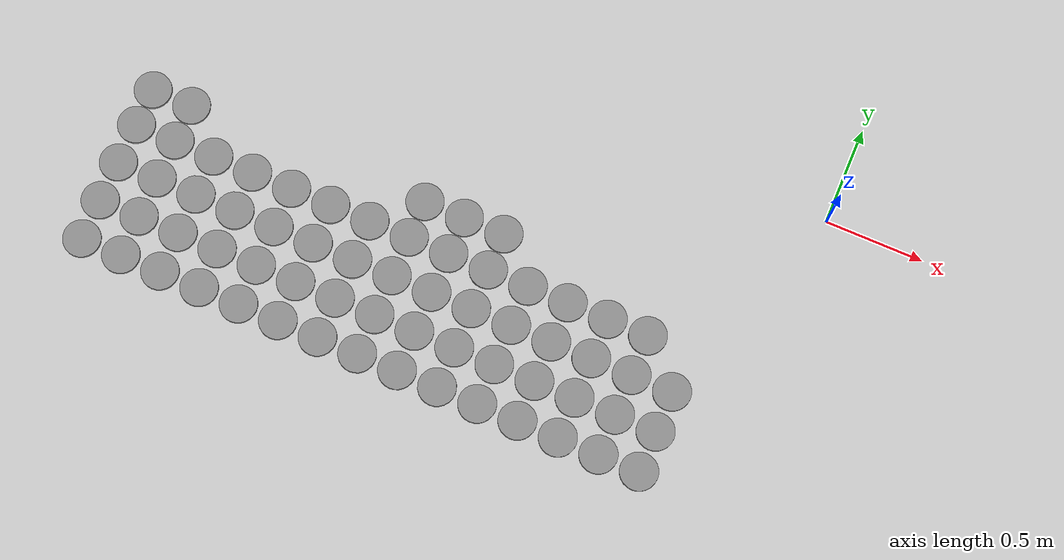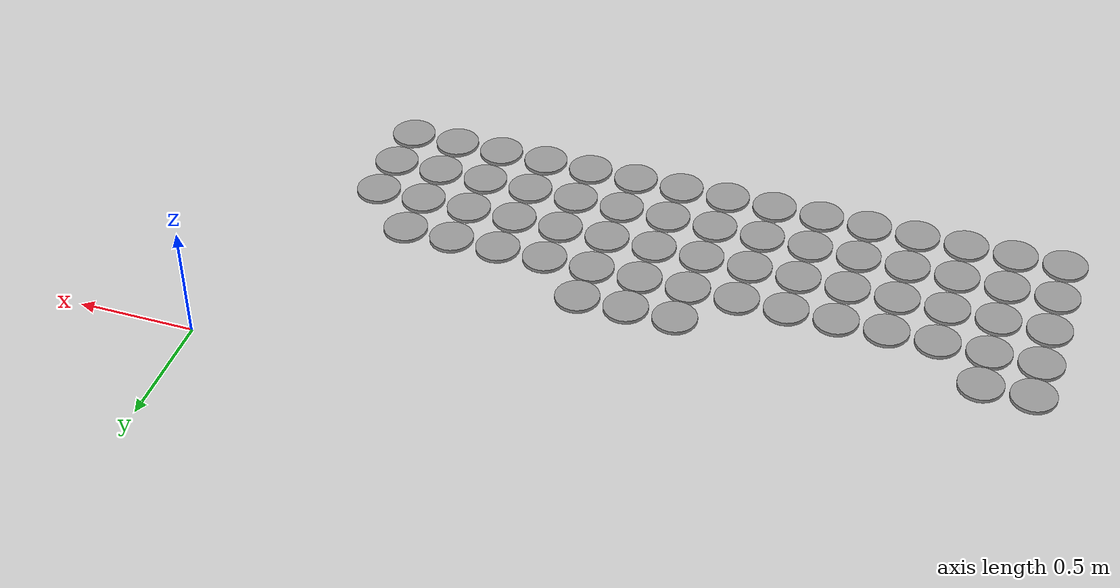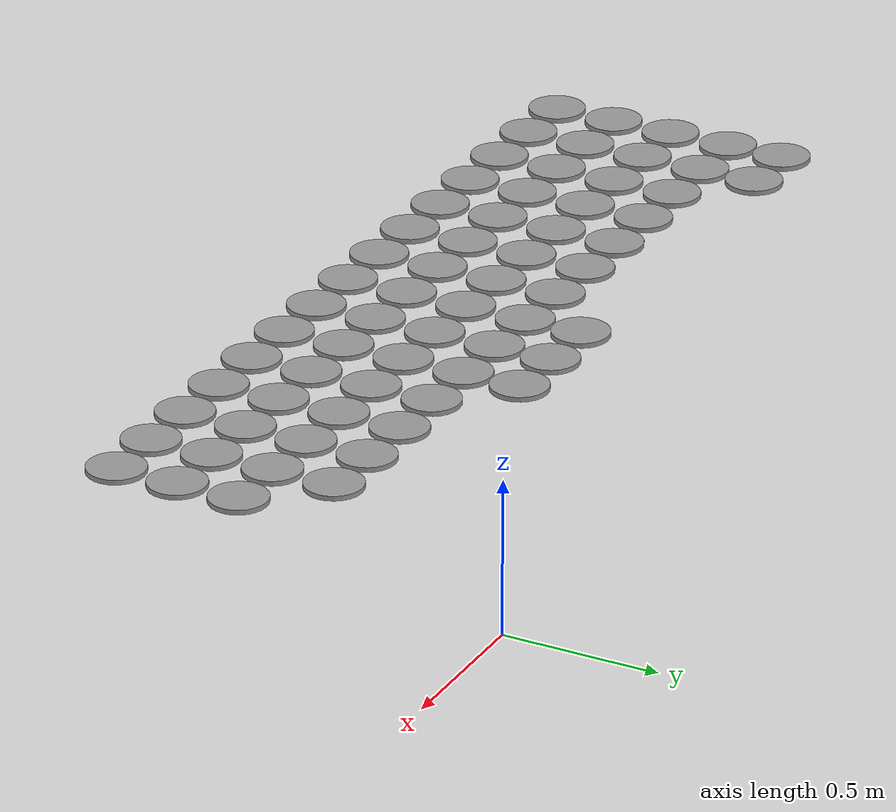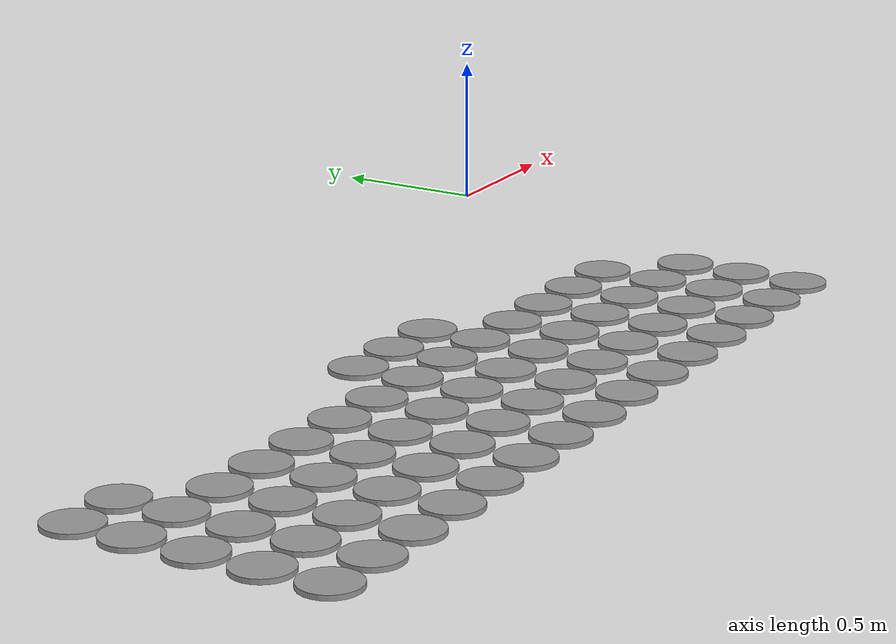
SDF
<sdf version="1.6">
 <world name="default">
  <model name="triple-I"><pose>-0.465032 -1.9092 0.030503 -0.000121 6.3e-05 0.005487</pose></model>
  <model name="unit_cylinder_clone_540">
   <pose>-3.32 -1.5 0.008111 0 -0 0</pose>
   <link name="link">
    <inertial>
     <mass>1</mass>
     <inertia><ixx>0.145833</ixx><ixy>0</ixy><ixz>0</ixz><iyy>0.145833</iyy><iyz>0</iyz><izz>0.125</izz></inertia>
    </inertial>
    <collision name="collision">
     <geometry><cylinder><radius>0.0950718</radius><length>0.0162339</length></cylinder></geometry>
     <max_contacts>5</max_contacts>
    </collision>
    <visual name="visual">
     <geometry><cylinder><radius>0.0950718</radius><length>0.0162339</length></cylinder></geometry>
     <material>
      <script><name>Gazebo/Grey</name><uri>file://media/materials/scripts/gazebo.material</uri></script>
     </material>
    </visual>
   </link>
  </model>
  <model name="unit_cylinder_clone_541">
   <pose>-3.32 -1.29 0.008111 0 -0 0</pose>
   <link name="link">
    <inertial>
     <mass>1</mass>
     <inertia><ixx>0.145833</ixx><ixy>0</ixy><ixz>0</ixz><iyy>0.145833</iyy><iyz>0</iyz><izz>0.125</izz></inertia>
    </inertial>
    <collision name="collision">
     <geometry><cylinder><radius>0.0950718</radius><length>0.0162339</length></cylinder></geometry>
     <max_contacts>5</max_contacts>
    </collision>
    <visual name="visual">
     <geometry><cylinder><radius>0.0950718</radius><length>0.0162339</length></cylinder></geometry>
     <material>
      <script><name>Gazebo/Grey</name><uri>file://media/materials/scripts/gazebo.material</uri></script>
     </material>
    </visual>
   </link>
  </model>
  <model name="unit_cylinder_clone_542">
   <pose>-3.32 -1.08 0.008111 0 -0 0</pose>
   <link name="link">
    <inertial>
     <mass>1</mass>
     <inertia><ixx>0.145833</ixx><ixy>0</ixy><ixz>0</ixz><iyy>0.145833</iyy><iyz>0</iyz><izz>0.125</izz></inertia>
    </inertial>
    <collision name="collision">
     <geometry><cylinder><radius>0.0950718</radius><length>0.0162339</length></cylinder></geometry>
     <max_contacts>5</max_contacts>
    </collision>
    <visual name="visual">
     <geometry><cylinder><radius>0.0950718</radius><length>0.0162339</length></cylinder></geometry>
     <material>
      <script><name>Gazebo/Grey</name><uri>file://media/materials/scripts/gazebo.material</uri></script>
     </material>
    </visual>
   </link>
  </model>
  <model name="unit_cylinder_clone_543">
   <pose>-3.32 -0.87 0.008111 0 -0 0</pose>
   <link name="link">
    <inertial>
     <mass>1</mass>
     <inertia><ixx>0.145833</ixx><ixy>0</ixy><ixz>0</ixz><iyy>0.145833</iyy><iyz>0</iyz><izz>0.125</izz></inertia>
    </inertial>
    <collision name="collision">
     <geometry><cylinder><radius>0.0950718</radius><length>0.0162339</length></cylinder></geometry>
     <max_contacts>5</max_contacts>
    </collision>
    <visual name="visual">
     <geometry><cylinder><radius>0.0950718</radius><length>0.0162339</length></cylinder></geometry>
     <material>
      <script><name>Gazebo/Grey</name><uri>file://media/materials/scripts/gazebo.material</uri></script>
     </material>
    </visual>
   </link>
  </model>
  <model name="unit_cylinder_clone_544">
   <pose>-3.32 -0.675077 0.008111 0 -0 0</pose>
   <link name="link">
    <inertial>
     <mass>1</mass>
     <inertia><ixx>0.145833</ixx><ixy>0</ixy><ixz>0</ixz><iyy>0.145833</iyy><iyz>0</iyz><izz>0.125</izz></inertia>
    </inertial>
    <collision name="collision">
     <geometry><cylinder><radius>0.0950718</radius><length>0.0162339</length></cylinder></geometry>
     <max_contacts>5</max_contacts>
    </collision>
    <visual name="visual">
     <geometry><cylinder><radius>0.0950718</radius><length>0.0162339</length></cylinder></geometry>
     <material>
      <script><name>Gazebo/Grey</name><uri>file://media/materials/scripts/gazebo.material</uri></script>
     </material>
    </visual>
   </link>
  </model>
  <model name="unit_cylinder_clone_545">
   <pose>-3.11 -1.5 0.008111 0 -0 0</pose>
   <link name="link">
    <inertial>
     <mass>1</mass>
     <inertia><ixx>0.145833</ixx><ixy>0</ixy><ixz>0</ixz><iyy>0.145833</iyy><iyz>0</iyz><izz>0.125</izz></inertia>
    </inertial>
    <collision name="collision">
     <geometry><cylinder><radius>0.0950718</radius><length>0.0162339</length></cylinder></geometry>
     <max_contacts>5</max_contacts>
    </collision>
    <visual name="visual">
     <geometry><cylinder><radius>0.0950718</radius><length>0.0162339</length></cylinder></geometry>
     <material>
      <script><name>Gazebo/Grey</name><uri>file://media/materials/scripts/gazebo.material</uri></script>
     </material>
    </visual>
   </link>
  </model>
  <model name="unit_cylinder_clone_546">
   <pose>-3.11 -1.29 0.008111 0 -0 0</pose>
   <link name="link">
    <inertial>
     <mass>1</mass>
     <inertia><ixx>0.145833</ixx><ixy>0</ixy><ixz>0</ixz><iyy>0.145833</iyy><iyz>0</iyz><izz>0.125</izz></inertia>
    </inertial>
    <collision name="collision">
     <geometry><cylinder><radius>0.0950718</radius><length>0.0162339</length></cylinder></geometry>
     <max_contacts>5</max_contacts>
    </collision>
    <visual name="visual">
     <geometry><cylinder><radius>0.0950718</radius><length>0.0162339</length></cylinder></geometry>
     <material>
      <script><name>Gazebo/Grey</name><uri>file://media/materials/scripts/gazebo.material</uri></script>
     </material>
    </visual>
   </link>
  </model>
  <model name="unit_cylinder_clone_547">
   <pose>-3.11 -1.08 0.008111 0 -0 0</pose>
   <link name="link">
    <inertial>
     <mass>1</mass>
     <inertia><ixx>0.145833</ixx><ixy>0</ixy><ixz>0</ixz><iyy>0.145833</iyy><iyz>0</iyz><izz>0.125</izz></inertia>
    </inertial>
    <collision name="collision">
     <geometry><cylinder><radius>0.0950718</radius><length>0.0162339</length></cylinder></geometry>
     <max_contacts>5</max_contacts>
    </collision>
    <visual name="visual">
     <geometry><cylinder><radius>0.0950718</radius><length>0.0162339</length></cylinder></geometry>
     <material>
      <script><name>Gazebo/Grey</name><uri>file://media/materials/scripts/gazebo.material</uri></script>
     </material>
    </visual>
   </link>
  </model>
  <model name="unit_cylinder_clone_548">
   <pose>-3.11 -0.87 0.008111 0 -0 0</pose>
   <link name="link">
    <inertial>
     <mass>1</mass>
     <inertia><ixx>0.145833</ixx><ixy>0</ixy><ixz>0</ixz><iyy>0.145833</iyy><iyz>0</iyz><izz>0.125</izz></inertia>
    </inertial>
    <collision name="collision">
     <geometry><cylinder><radius>0.0950718</radius><length>0.0162339</length></cylinder></geometry>
     <max_contacts>5</max_contacts>
    </collision>
    <visual name="visual">
     <geometry><cylinder><radius>0.0950718</radius><length>0.0162339</length></cylinder></geometry>
     <material>
      <script><name>Gazebo/Grey</name><uri>file://media/materials/scripts/gazebo.material</uri></script>
     </material>
    </visual>
   </link>
  </model>
  <model name="unit_cylinder_clone_549">
   <pose>-3.11 -0.675077 0.008111 0 -0 0</pose>
   <link name="link">
    <inertial>
     <mass>1</mass>
     <inertia><ixx>0.145833</ixx><ixy>0</ixy><ixz>0</ixz><iyy>0.145833</iyy><iyz>0</iyz><izz>0.125</izz></inertia>
    </inertial>
    <collision name="collision">
     <geometry><cylinder><radius>0.0950718</radius><length>0.0162339</length></cylinder></geometry>
     <max_contacts>5</max_contacts>
    </collision>
    <visual name="visual">
     <geometry><cylinder><radius>0.0950718</radius><length>0.0162339</length></cylinder></geometry>
     <material>
      <script><name>Gazebo/Grey</name><uri>file://media/materials/scripts/gazebo.material</uri></script>
     </material>
    </visual>
   </link>
  </model>
  <model name="unit_cylinder_clone_550">
   <pose>-2.9 -1.5 0.008111 0 -0 0</pose>
   <link name="link">
    <inertial>
     <mass>1</mass>
     <inertia><ixx>0.145833</ixx><ixy>0</ixy><ixz>0</ixz><iyy>0.145833</iyy><iyz>0</iyz><izz>0.125</izz></inertia>
    </inertial>
    <collision name="collision">
     <geometry><cylinder><radius>0.0950718</radius><length>0.0162339</length></cylinder></geometry>
     <max_contacts>5</max_contacts>
    </collision>
    <visual name="visual">
     <geometry><cylinder><radius>0.0950718</radius><length>0.0162339</length></cylinder></geometry>
     <material>
      <script><name>Gazebo/Grey</name><uri>file://media/materials/scripts/gazebo.material</uri></script>
     </material>
    </visual>
   </link>
  </model>
  <model name="unit_cylinder_clone_551">
   <pose>-2.9 -1.29 0.008111 0 -0 0</pose>
   <link name="link">
    <inertial>
     <mass>1</mass>
     <inertia><ixx>0.145833</ixx><ixy>0</ixy><ixz>0</ixz><iyy>0.145833</iyy><iyz>0</iyz><izz>0.125</izz></inertia>
    </inertial>
    <collision name="collision">
     <geometry><cylinder><radius>0.0950718</radius><length>0.0162339</length></cylinder></geometry>
     <max_contacts>5</max_contacts>
    </collision>
    <visual name="visual">
     <geometry><cylinder><radius>0.0950718</radius><length>0.0162339</length></cylinder></geometry>
     <material>
      <script><name>Gazebo/Grey</name><uri>file://media/materials/scripts/gazebo.material</uri></script>
     </material>
    </visual>
   </link>
  </model>
  <model name="unit_cylinder_clone_552">
   <pose>-2.9 -1.08 0.008111 0 -0 0</pose>
   <link name="link">
    <inertial>
     <mass>1</mass>
     <inertia><ixx>0.145833</ixx><ixy>0</ixy><ixz>0</ixz><iyy>0.145833</iyy><iyz>0</iyz><izz>0.125</izz></inertia>
    </inertial>
    <collision name="collision">
     <geometry><cylinder><radius>0.0950718</radius><length>0.0162339</length></cylinder></geometry>
     <max_contacts>5</max_contacts>
    </collision>
    <visual name="visual">
     <geometry><cylinder><radius>0.0950718</radius><length>0.0162339</length></cylinder></geometry>
     <material>
      <script><name>Gazebo/Grey</name><uri>file://media/materials/scripts/gazebo.material</uri></script>
     </material>
    </visual>
   </link>
  </model>
  <model name="unit_cylinder_clone_553">
   <pose>-2.9 -0.87 0.008111 0 -0 0</pose>
   <link name="link">
    <inertial>
     <mass>1</mass>
     <inertia><ixx>0.145833</ixx><ixy>0</ixy><ixz>0</ixz><iyy>0.145833</iyy><iyz>0</iyz><izz>0.125</izz></inertia>
    </inertial>
    <collision name="collision">
     <geometry><cylinder><radius>0.0950718</radius><length>0.0162339</length></cylinder></geometry>
     <max_contacts>5</max_contacts>
    </collision>
    <visual name="visual">
     <geometry><cylinder><radius>0.0950718</radius><length>0.0162339</length></cylinder></geometry>
     <material>
      <script><name>Gazebo/Grey</name><uri>file://media/materials/scripts/gazebo.material</uri></script>
     </material>
    </visual>
   </link>
  </model>
  <model name="unit_cylinder_clone_555">
   <pose>-2.69 -1.5 0.008111 0 -0 0</pose>
   <link name="link">
    <inertial>
     <mass>1</mass>
     <inertia><ixx>0.145833</ixx><ixy>0</ixy><ixz>0</ixz><iyy>0.145833</iyy><iyz>0</iyz><izz>0.125</izz></inertia>
    </inertial>
    <collision name="collision">
     <geometry><cylinder><radius>0.0950718</radius><length>0.0162339</length></cylinder></geometry>
     <max_contacts>5</max_contacts>
    </collision>
    <visual name="visual">
     <geometry><cylinder><radius>0.0950718</radius><length>0.0162339</length></cylinder></geometry>
     <material>
      <script><name>Gazebo/Grey</name><uri>file://media/materials/scripts/gazebo.material</uri></script>
     </material>
    </visual>
   </link>
  </model>
  <model name="unit_cylinder_clone_556">
   <pose>-2.69 -1.29 0.008111 0 -0 0</pose>
   <link name="link">
    <inertial>
     <mass>1</mass>
     <inertia><ixx>0.145833</ixx><ixy>0</ixy><ixz>0</ixz><iyy>0.145833</iyy><iyz>0</iyz><izz>0.125</izz></inertia>
    </inertial>
    <collision name="collision">
     <geometry><cylinder><radius>0.0950718</radius><length>0.0162339</length></cylinder></geometry>
     <max_contacts>5</max_contacts>
    </collision>
    <visual name="visual">
     <geometry><cylinder><radius>0.0950718</radius><length>0.0162339</length></cylinder></geometry>
     <material>
      <script><name>Gazebo/Grey</name><uri>file://media/materials/scripts/gazebo.material</uri></script>
     </material>
    </visual>
   </link>
  </model>
  <model name="unit_cylinder_clone_557">
   <pose>-2.69 -1.08 0.008111 0 -0 0</pose>
   <link name="link">
    <inertial>
     <mass>1</mass>
     <inertia><ixx>0.145833</ixx><ixy>0</ixy><ixz>0</ixz><iyy>0.145833</iyy><iyz>0</iyz><izz>0.125</izz></inertia>
    </inertial>
    <collision name="collision">
     <geometry><cylinder><radius>0.0950718</radius><length>0.0162339</length></cylinder></geometry>
     <max_contacts>5</max_contacts>
    </collision>
    <visual name="visual">
     <geometry><cylinder><radius>0.0950718</radius><length>0.0162339</length></cylinder></geometry>
     <material>
      <script><name>Gazebo/Grey</name><uri>file://media/materials/scripts/gazebo.material</uri></script>
     </material>
    </visual>
   </link>
  </model>
  <model name="unit_cylinder_clone_558">
   <pose>-2.69 -0.87 0.008111 0 -0 0</pose>
   <link name="link">
    <inertial>
     <mass>1</mass>
     <inertia><ixx>0.145833</ixx><ixy>0</ixy><ixz>0</ixz><iyy>0.145833</iyy><iyz>0</iyz><izz>0.125</izz></inertia>
    </inertial>
    <collision name="collision">
     <geometry><cylinder><radius>0.0950718</radius><length>0.0162339</length></cylinder></geometry>
     <max_contacts>5</max_contacts>
    </collision>
    <visual name="visual">
     <geometry><cylinder><radius>0.0950718</radius><length>0.0162339</length></cylinder></geometry>
     <material>
      <script><name>Gazebo/Grey</name><uri>file://media/materials/scripts/gazebo.material</uri></script>
     </material>
    </visual>
   </link>
  </model>
  <model name="unit_cylinder_clone_560">
   <pose>-2.48 -1.5 0.008111 0 -0 0</pose>
   <link name="link">
    <inertial>
     <mass>1</mass>
     <inertia><ixx>0.145833</ixx><ixy>0</ixy><ixz>0</ixz><iyy>0.145833</iyy><iyz>0</iyz><izz>0.125</izz></inertia>
    </inertial>
    <collision name="collision">
     <geometry><cylinder><radius>0.0950718</radius><length>0.0162339</length></cylinder></geometry>
     <max_contacts>5</max_contacts>
    </collision>
    <visual name="visual">
     <geometry><cylinder><radius>0.0950718</radius><length>0.0162339</length></cylinder></geometry>
     <material>
      <script><name>Gazebo/Grey</name><uri>file://media/materials/scripts/gazebo.material</uri></script>
     </material>
    </visual>
   </link>
  </model>
  <model name="unit_cylinder_clone_561">
   <pose>-2.48 -1.29 0.008111 0 -0 0</pose>
   <link name="link">
    <inertial>
     <mass>1</mass>
     <inertia><ixx>0.145833</ixx><ixy>0</ixy><ixz>0</ixz><iyy>0.145833</iyy><iyz>0</iyz><izz>0.125</izz></inertia>
    </inertial>
    <collision name="collision">
     <geometry><cylinder><radius>0.0950718</radius><length>0.0162339</length></cylinder></geometry>
     <max_contacts>5</max_contacts>
    </collision>
    <visual name="visual">
     <geometry><cylinder><radius>0.0950718</radius><length>0.0162339</length></cylinder></geometry>
     <material>
      <script><name>Gazebo/Grey</name><uri>file://media/materials/scripts/gazebo.material</uri></script>
     </material>
    </visual>
   </link>
  </model>
  <model name="unit_cylinder_clone_562">
   <pose>-2.48 -1.08 0.008111 0 -0 0</pose>
   <link name="link">
    <inertial>
     <mass>1</mass>
     <inertia><ixx>0.145833</ixx><ixy>0</ixy><ixz>0</ixz><iyy>0.145833</iyy><iyz>0</iyz><izz>0.125</izz></inertia>
    </inertial>
    <collision name="collision">
     <geometry><cylinder><radius>0.0950718</radius><length>0.0162339</length></cylinder></geometry>
     <max_contacts>5</max_contacts>
    </collision>
    <visual name="visual">
     <geometry><cylinder><radius>0.0950718</radius><length>0.0162339</length></cylinder></geometry>
     <material>
      <script><name>Gazebo/Grey</name><uri>file://media/materials/scripts/gazebo.material</uri></script>
     </material>
    </visual>
   </link>
  </model>
  <model name="unit_cylinder_clone_563">
   <pose>-2.48 -0.87 0.008111 0 -0 0</pose>
   <link name="link">
    <inertial>
     <mass>1</mass>
     <inertia><ixx>0.145833</ixx><ixy>0</ixy><ixz>0</ixz><iyy>0.145833</iyy><iyz>0</iyz><izz>0.125</izz></inertia>
    </inertial>
    <collision name="collision">
     <geometry><cylinder><radius>0.0950718</radius><length>0.0162339</length></cylinder></geometry>
     <max_contacts>5</max_contacts>
    </collision>
    <visual name="visual">
     <geometry><cylinder><radius>0.0950718</radius><length>0.0162339</length></cylinder></geometry>
     <material>
      <script><name>Gazebo/Grey</name><uri>file://media/materials/scripts/gazebo.material</uri></script>
     </material>
    </visual>
   </link>
  </model>
  <model name="unit_cylinder_clone_565">
   <pose>-2.27 -1.5 0.008111 0 -0 0</pose>
   <link name="link">
    <inertial>
     <mass>1</mass>
     <inertia><ixx>0.145833</ixx><ixy>0</ixy><ixz>0</ixz><iyy>0.145833</iyy><iyz>0</iyz><izz>0.125</izz></inertia>
    </inertial>
    <collision name="collision">
     <geometry><cylinder><radius>0.0950718</radius><length>0.0162339</length></cylinder></geometry>
     <max_contacts>5</max_contacts>
    </collision>
    <visual name="visual">
     <geometry><cylinder><radius>0.0950718</radius><length>0.0162339</length></cylinder></geometry>
     <material>
      <script><name>Gazebo/Grey</name><uri>file://media/materials/scripts/gazebo.material</uri></script>
     </material>
    </visual>
   </link>
  </model>
  <model name="unit_cylinder_clone_566">
   <pose>-2.27 -1.29 0.008111 0 -0 0</pose>
   <link name="link">
    <inertial>
     <mass>1</mass>
     <inertia><ixx>0.145833</ixx><ixy>0</ixy><ixz>0</ixz><iyy>0.145833</iyy><iyz>0</iyz><izz>0.125</izz></inertia>
    </inertial>
    <collision name="collision">
     <geometry><cylinder><radius>0.0950718</radius><length>0.0162339</length></cylinder></geometry>
     <max_contacts>5</max_contacts>
    </collision>
    <visual name="visual">
     <geometry><cylinder><radius>0.0950718</radius><length>0.0162339</length></cylinder></geometry>
     <material>
      <script><name>Gazebo/Grey</name><uri>file://media/materials/scripts/gazebo.material</uri></script>
     </material>
    </visual>
   </link>
  </model>
  <model name="unit_cylinder_clone_567">
   <pose>-2.27 -1.08 0.008111 0 -0 0</pose>
   <link name="link">
    <inertial>
     <mass>1</mass>
     <inertia><ixx>0.145833</ixx><ixy>0</ixy><ixz>0</ixz><iyy>0.145833</iyy><iyz>0</iyz><izz>0.125</izz></inertia>
    </inertial>
    <collision name="collision">
     <geometry><cylinder><radius>0.0950718</radius><length>0.0162339</length></cylinder></geometry>
     <max_contacts>5</max_contacts>
    </collision>
    <visual name="visual">
     <geometry><cylinder><radius>0.0950718</radius><length>0.0162339</length></cylinder></geometry>
     <material>
      <script><name>Gazebo/Grey</name><uri>file://media/materials/scripts/gazebo.material</uri></script>
     </material>
    </visual>
   </link>
  </model>
  <model name="unit_cylinder_clone_568">
   <pose>-2.27 -0.87 0.008111 0 -0 0</pose>
   <link name="link">
    <inertial>
     <mass>1</mass>
     <inertia><ixx>0.145833</ixx><ixy>0</ixy><ixz>0</ixz><iyy>0.145833</iyy><iyz>0</iyz><izz>0.125</izz></inertia>
    </inertial>
    <collision name="collision">
     <geometry><cylinder><radius>0.0950718</radius><length>0.0162339</length></cylinder></geometry>
     <max_contacts>5</max_contacts>
    </collision>
    <visual name="visual">
     <geometry><cylinder><radius>0.0950718</radius><length>0.0162339</length></cylinder></geometry>
     <material>
      <script><name>Gazebo/Grey</name><uri>file://media/materials/scripts/gazebo.material</uri></script>
     </material>
    </visual>
   </link>
  </model>
  <model name="unit_cylinder_clone_570">
   <pose>-2.06 -1.5 0.008111 0 -0 0</pose>
   <link name="link">
    <inertial>
     <mass>1</mass>
     <inertia><ixx>0.145833</ixx><ixy>0</ixy><ixz>0</ixz><iyy>0.145833</iyy><iyz>0</iyz><izz>0.125</izz></inertia>
    </inertial>
    <collision name="collision">
     <geometry><cylinder><radius>0.0950718</radius><length>0.0162339</length></cylinder></geometry>
     <max_contacts>5</max_contacts>
    </collision>
    <visual name="visual">
     <geometry><cylinder><radius>0.0950718</radius><length>0.0162339</length></cylinder></geometry>
     <material>
      <script><name>Gazebo/Grey</name><uri>file://media/materials/scripts/gazebo.material</uri></script>
     </material>
    </visual>
   </link>
  </model>
  <model name="unit_cylinder_clone_571">
   <pose>-2.06 -1.29 0.008111 0 -0 0</pose>
   <link name="link">
    <inertial>
     <mass>1</mass>
     <inertia><ixx>0.145833</ixx><ixy>0</ixy><ixz>0</ixz><iyy>0.145833</iyy><iyz>0</iyz><izz>0.125</izz></inertia>
    </inertial>
    <collision name="collision">
     <geometry><cylinder><radius>0.0950718</radius><length>0.0162339</length></cylinder></geometry>
     <max_contacts>5</max_contacts>
    </collision>
    <visual name="visual">
     <geometry><cylinder><radius>0.0950718</radius><length>0.0162339</length></cylinder></geometry>
     <material>
      <script><name>Gazebo/Grey</name><uri>file://media/materials/scripts/gazebo.material</uri></script>
     </material>
    </visual>
   </link>
  </model>
  <model name="unit_cylinder_clone_572">
   <pose>-2.06 -1.08 0.008111 0 -0 0</pose>
   <link name="link">
    <inertial>
     <mass>1</mass>
     <inertia><ixx>0.145833</ixx><ixy>0</ixy><ixz>0</ixz><iyy>0.145833</iyy><iyz>0</iyz><izz>0.125</izz></inertia>
    </inertial>
    <collision name="collision">
     <geometry><cylinder><radius>0.0950718</radius><length>0.0162339</length></cylinder></geometry>
     <max_contacts>5</max_contacts>
    </collision>
    <visual name="visual">
     <geometry><cylinder><radius>0.0950718</radius><length>0.0162339</length></cylinder></geometry>
     <material>
      <script><name>Gazebo/Grey</name><uri>file://media/materials/scripts/gazebo.material</uri></script>
     </material>
    </visual>
   </link>
  </model>
  <model name="unit_cylinder_clone_573">
   <pose>-2.06 -0.87 0.008111 0 -0 0</pose>
   <link name="link">
    <inertial>
     <mass>1</mass>
     <inertia><ixx>0.145833</ixx><ixy>0</ixy><ixz>0</ixz><iyy>0.145833</iyy><iyz>0</iyz><izz>0.125</izz></inertia>
    </inertial>
    <collision name="collision">
     <geometry><cylinder><radius>0.0950718</radius><length>0.0162339</length></cylinder></geometry>
     <max_contacts>5</max_contacts>
    </collision>
    <visual name="visual">
     <geometry><cylinder><radius>0.0950718</radius><length>0.0162339</length></cylinder></geometry>
     <material>
      <script><name>Gazebo/Grey</name><uri>file://media/materials/scripts/gazebo.material</uri></script>
     </material>
    </visual>
   </link>
  </model>
  <model name="unit_cylinder_clone_575">
   <pose>-1.85 -1.5 0.008111 0 -0 0</pose>
   <link name="link">
    <inertial>
     <mass>1</mass>
     <inertia><ixx>0.145833</ixx><ixy>0</ixy><ixz>0</ixz><iyy>0.145833</iyy><iyz>0</iyz><izz>0.125</izz></inertia>
    </inertial>
    <collision name="collision">
     <geometry><cylinder><radius>0.0950718</radius><length>0.0162339</length></cylinder></geometry>
     <max_contacts>5</max_contacts>
    </collision>
    <visual name="visual">
     <geometry><cylinder><radius>0.0950718</radius><length>0.0162339</length></cylinder></geometry>
     <material>
      <script><name>Gazebo/Grey</name><uri>file://media/materials/scripts/gazebo.material</uri></script>
     </material>
    </visual>
   </link>
  </model>
  <model name="unit_cylinder_clone_576">
   <pose>-1.85 -1.29 0.008111 0 -0 0</pose>
   <link name="link">
    <inertial>
     <mass>1</mass>
     <inertia><ixx>0.145833</ixx><ixy>0</ixy><ixz>0</ixz><iyy>0.145833</iyy><iyz>0</iyz><izz>0.125</izz></inertia>
    </inertial>
    <collision name="collision">
     <geometry><cylinder><radius>0.0950718</radius><length>0.0162339</length></cylinder></geometry>
     <max_contacts>5</max_contacts>
    </collision>
    <visual name="visual">
     <geometry><cylinder><radius>0.0950718</radius><length>0.0162339</length></cylinder></geometry>
     <material>
      <script><name>Gazebo/Grey</name><uri>file://media/materials/scripts/gazebo.material</uri></script>
     </material>
    </visual>
   </link>
  </model>
  <model name="unit_cylinder_clone_577">
   <pose>-1.85 -1.08 0.008111 0 -0 0</pose>
   <link name="link">
    <inertial>
     <mass>1</mass>
     <inertia><ixx>0.145833</ixx><ixy>0</ixy><ixz>0</ixz><iyy>0.145833</iyy><iyz>0</iyz><izz>0.125</izz></inertia>
    </inertial>
    <collision name="collision">
     <geometry><cylinder><radius>0.0950718</radius><length>0.0162339</length></cylinder></geometry>
     <max_contacts>5</max_contacts>
    </collision>
    <visual name="visual">
     <geometry><cylinder><radius>0.0950718</radius><length>0.0162339</length></cylinder></geometry>
     <material>
      <script><name>Gazebo/Grey</name><uri>file://media/materials/scripts/gazebo.material</uri></script>
     </material>
    </visual>
   </link>
  </model>
  <model name="unit_cylinder_clone_578">
   <pose>-1.85 -0.87 0.008111 0 -0 0</pose>
   <link name="link">
    <inertial>
     <mass>1</mass>
     <inertia><ixx>0.145833</ixx><ixy>0</ixy><ixz>0</ixz><iyy>0.145833</iyy><iyz>0</iyz><izz>0.125</izz></inertia>
    </inertial>
    <collision name="collision">
     <geometry><cylinder><radius>0.0950718</radius><length>0.0162339</length></cylinder></geometry>
     <max_contacts>5</max_contacts>
    </collision>
    <visual name="visual">
     <geometry><cylinder><radius>0.0950718</radius><length>0.0162339</length></cylinder></geometry>
     <material>
      <script><name>Gazebo/Grey</name><uri>file://media/materials/scripts/gazebo.material</uri></script>
     </material>
    </visual>
   </link>
  </model>
  <model name="unit_cylinder_clone_579">
   <pose>-1.85 -0.675077 0.008111 0 -0 0</pose>
   <link name="link">
    <inertial>
     <mass>1</mass>
     <inertia><ixx>0.145833</ixx><ixy>0</ixy><ixz>0</ixz><iyy>0.145833</iyy><iyz>0</iyz><izz>0.125</izz></inertia>
    </inertial>
    <collision name="collision">
     <geometry><cylinder><radius>0.0950718</radius><length>0.0162339</length></cylinder></geometry>
     <max_contacts>5</max_contacts>
    </collision>
    <visual name="visual">
     <geometry><cylinder><radius>0.0950718</radius><length>0.0162339</length></cylinder></geometry>
     <material>
      <script><name>Gazebo/Grey</name><uri>file://media/materials/scripts/gazebo.material</uri></script>
     </material>
    </visual>
   </link>
  </model>
  <model name="unit_cylinder_clone_580">
   <pose>-1.64 -1.5 0.008111 0 -0 0</pose>
   <link name="link">
    <inertial>
     <mass>1</mass>
     <inertia><ixx>0.145833</ixx><ixy>0</ixy><ixz>0</ixz><iyy>0.145833</iyy><iyz>0</iyz><izz>0.125</izz></inertia>
    </inertial>
    <collision name="collision">
     <geometry><cylinder><radius>0.0950718</radius><length>0.0162339</length></cylinder></geometry>
     <max_contacts>5</max_contacts>
    </collision>
    <visual name="visual">
     <geometry><cylinder><radius>0.0950718</radius><length>0.0162339</length></cylinder></geometry>
     <material>
      <script><name>Gazebo/Grey</name><uri>file://media/materials/scripts/gazebo.material</uri></script>
     </material>
    </visual>
   </link>
  </model>
  <model name="unit_cylinder_clone_581">
   <pose>-1.64 -1.29 0.008111 0 -0 0</pose>
   <link name="link">
    <inertial>
     <mass>1</mass>
     <inertia><ixx>0.145833</ixx><ixy>0</ixy><ixz>0</ixz><iyy>0.145833</iyy><iyz>0</iyz><izz>0.125</izz></inertia>
    </inertial>
    <collision name="collision">
     <geometry><cylinder><radius>0.0950718</radius><length>0.0162339</length></cylinder></geometry>
     <max_contacts>5</max_contacts>
    </collision>
    <visual name="visual">
     <geometry><cylinder><radius>0.0950718</radius><length>0.0162339</length></cylinder></geometry>
     <material>
      <script><name>Gazebo/Grey</name><uri>file://media/materials/scripts/gazebo.material</uri></script>
     </material>
    </visual>
   </link>
  </model>
  <model name="unit_cylinder_clone_582">
   <pose>-1.64 -1.08 0.008111 0 -0 0</pose>
   <link name="link">
    <inertial>
     <mass>1</mass>
     <inertia><ixx>0.145833</ixx><ixy>0</ixy><ixz>0</ixz><iyy>0.145833</iyy><iyz>0</iyz><izz>0.125</izz></inertia>
    </inertial>
    <collision name="collision">
     <geometry><cylinder><radius>0.0950718</radius><length>0.0162339</length></cylinder></geometry>
     <max_contacts>5</max_contacts>
    </collision>
    <visual name="visual">
     <geometry><cylinder><radius>0.0950718</radius><length>0.0162339</length></cylinder></geometry>
     <material>
      <script><name>Gazebo/Grey</name><uri>file://media/materials/scripts/gazebo.material</uri></script>
     </material>
    </visual>
   </link>
  </model>
  <model name="unit_cylinder_clone_583">
   <pose>-1.64 -0.87 0.008111 0 -0 0</pose>
   <link name="link">
    <inertial>
     <mass>1</mass>
     <inertia><ixx>0.145833</ixx><ixy>0</ixy><ixz>0</ixz><iyy>0.145833</iyy><iyz>0</iyz><izz>0.125</izz></inertia>
    </inertial>
    <collision name="collision">
     <geometry><cylinder><radius>0.0950718</radius><length>0.0162339</length></cylinder></geometry>
     <max_contacts>5</max_contacts>
    </collision>
    <visual name="visual">
     <geometry><cylinder><radius>0.0950718</radius><length>0.0162339</length></cylinder></geometry>
     <material>
      <script><name>Gazebo/Grey</name><uri>file://media/materials/scripts/gazebo.material</uri></script>
     </material>
    </visual>
   </link>
  </model>
  <model name="unit_cylinder_clone_584">
   <pose>-1.64 -0.675077 0.008111 0 -0 0</pose>
   <link name="link">
    <inertial>
     <mass>1</mass>
     <inertia><ixx>0.145833</ixx><ixy>0</ixy><ixz>0</ixz><iyy>0.145833</iyy><iyz>0</iyz><izz>0.125</izz></inertia>
    </inertial>
    <collision name="collision">
     <geometry><cylinder><radius>0.0950718</radius><length>0.0162339</length></cylinder></geometry>
     <max_contacts>5</max_contacts>
    </collision>
    <visual name="visual">
     <geometry><cylinder><radius>0.0950718</radius><length>0.0162339</length></cylinder></geometry>
     <material>
      <script><name>Gazebo/Grey</name><uri>file://media/materials/scripts/gazebo.material</uri></script>
     </material>
    </visual>
   </link>
  </model>
  <model name="unit_cylinder_clone_585">
   <pose>-1.43 -1.5 0.008111 0 -0 0</pose>
   <link name="link">
    <inertial>
     <mass>1</mass>
     <inertia><ixx>0.145833</ixx><ixy>0</ixy><ixz>0</ixz><iyy>0.145833</iyy><iyz>0</iyz><izz>0.125</izz></inertia>
    </inertial>
    <collision name="collision">
     <geometry><cylinder><radius>0.0950718</radius><length>0.0162339</length></cylinder></geometry>
     <max_contacts>5</max_contacts>
    </collision>
    <visual name="visual">
     <geometry><cylinder><radius>0.0950718</radius><length>0.0162339</length></cylinder></geometry>
     <material>
      <script><name>Gazebo/Grey</name><uri>file://media/materials/scripts/gazebo.material</uri></script>
     </material>
    </visual>
   </link>
  </model>
  <model name="unit_cylinder_clone_586">
   <pose>-1.43 -1.29 0.008111 0 -0 0</pose>
   <link name="link">
    <inertial>
     <mass>1</mass>
     <inertia><ixx>0.145833</ixx><ixy>0</ixy><ixz>0</ixz><iyy>0.145833</iyy><iyz>0</iyz><izz>0.125</izz></inertia>
    </inertial>
    <collision name="collision">
     <geometry><cylinder><radius>0.0950718</radius><length>0.0162339</length></cylinder></geometry>
     <max_contacts>5</max_contacts>
    </collision>
    <visual name="visual">
     <geometry><cylinder><radius>0.0950718</radius><length>0.0162339</length></cylinder></geometry>
     <material>
      <script><name>Gazebo/Grey</name><uri>file://media/materials/scripts/gazebo.material</uri></script>
     </material>
    </visual>
   </link>
  </model>
  <model name="unit_cylinder_clone_587">
   <pose>-1.43 -1.08 0.008111 0 -0 0</pose>
   <link name="link">
    <inertial>
     <mass>1</mass>
     <inertia><ixx>0.145833</ixx><ixy>0</ixy><ixz>0</ixz><iyy>0.145833</iyy><iyz>0</iyz><izz>0.125</izz></inertia>
    </inertial>
    <collision name="collision">
     <geometry><cylinder><radius>0.0950718</radius><length>0.0162339</length></cylinder></geometry>
     <max_contacts>5</max_contacts>
    </collision>
    <visual name="visual">
     <geometry><cylinder><radius>0.0950718</radius><length>0.0162339</length></cylinder></geometry>
     <material>
      <script><name>Gazebo/Grey</name><uri>file://media/materials/scripts/gazebo.material</uri></script>
     </material>
    </visual>
   </link>
  </model>
  <model name="unit_cylinder_clone_588">
   <pose>-1.43 -0.87 0.008111 0 -0 0</pose>
   <link name="link">
    <inertial>
     <mass>1</mass>
     <inertia><ixx>0.145833</ixx><ixy>0</ixy><ixz>0</ixz><iyy>0.145833</iyy><iyz>0</iyz><izz>0.125</izz></inertia>
    </inertial>
    <collision name="collision">
     <geometry><cylinder><radius>0.0950718</radius><length>0.0162339</length></cylinder></geometry>
     <max_contacts>5</max_contacts>
    </collision>
    <visual name="visual">
     <geometry><cylinder><radius>0.0950718</radius><length>0.0162339</length></cylinder></geometry>
     <material>
      <script><name>Gazebo/Grey</name><uri>file://media/materials/scripts/gazebo.material</uri></script>
     </material>
    </visual>
   </link>
  </model>
  <model name="unit_cylinder_clone_589">
   <pose>-1.43 -0.675077 0.008111 0 -0 0</pose>
   <link name="link">
    <inertial>
     <mass>1</mass>
     <inertia><ixx>0.145833</ixx><ixy>0</ixy><ixz>0</ixz><iyy>0.145833</iyy><iyz>0</iyz><izz>0.125</izz></inertia>
    </inertial>
    <collision name="collision">
     <geometry><cylinder><radius>0.0950718</radius><length>0.0162339</length></cylinder></geometry>
     <max_contacts>5</max_contacts>
    </collision>
    <visual name="visual">
     <geometry><cylinder><radius>0.0950718</radius><length>0.0162339</length></cylinder></geometry>
     <material>
      <script><name>Gazebo/Grey</name><uri>file://media/materials/scripts/gazebo.material</uri></script>
     </material>
    </visual>
   </link>
  </model>
  <model name="unit_cylinder_clone_590">
   <pose>-1.22 -1.5 0.008111 0 -0 0</pose>
   <link name="link">
    <inertial>
     <mass>1</mass>
     <inertia><ixx>0.145833</ixx><ixy>0</ixy><ixz>0</ixz><iyy>0.145833</iyy><iyz>0</iyz><izz>0.125</izz></inertia>
    </inertial>
    <collision name="collision">
     <geometry><cylinder><radius>0.0950718</radius><length>0.0162339</length></cylinder></geometry>
     <max_contacts>5</max_contacts>
    </collision>
    <visual name="visual">
     <geometry><cylinder><radius>0.0950718</radius><length>0.0162339</length></cylinder></geometry>
     <material>
      <script><name>Gazebo/Grey</name><uri>file://media/materials/scripts/gazebo.material</uri></script>
     </material>
    </visual>
   </link>
  </model>
  <model name="unit_cylinder_clone_591">
   <pose>-1.22 -1.29 0.008111 0 -0 0</pose>
   <link name="link">
    <inertial>
     <mass>1</mass>
     <inertia><ixx>0.145833</ixx><ixy>0</ixy><ixz>0</ixz><iyy>0.145833</iyy><iyz>0</iyz><izz>0.125</izz></inertia>
    </inertial>
    <collision name="collision">
     <geometry><cylinder><radius>0.0950718</radius><length>0.0162339</length></cylinder></geometry>
     <max_contacts>5</max_contacts>
    </collision>
    <visual name="visual">
     <geometry><cylinder><radius>0.0950718</radius><length>0.0162339</length></cylinder></geometry>
     <material>
      <script><name>Gazebo/Grey</name><uri>file://media/materials/scripts/gazebo.material</uri></script>
     </material>
    </visual>
   </link>
  </model>
  <model name="unit_cylinder_clone_592">
   <pose>-1.22 -1.08 0.008111 0 -0 0</pose>
   <link name="link">
    <inertial>
     <mass>1</mass>
     <inertia><ixx>0.145833</ixx><ixy>0</ixy><ixz>0</ixz><iyy>0.145833</iyy><iyz>0</iyz><izz>0.125</izz></inertia>
    </inertial>
    <collision name="collision">
     <geometry><cylinder><radius>0.0950718</radius><length>0.0162339</length></cylinder></geometry>
     <max_contacts>5</max_contacts>
    </collision>
    <visual name="visual">
     <geometry><cylinder><radius>0.0950718</radius><length>0.0162339</length></cylinder></geometry>
     <material>
      <script><name>Gazebo/Grey</name><uri>file://media/materials/scripts/gazebo.material</uri></script>
     </material>
    </visual>
   </link>
  </model>
  <model name="unit_cylinder_clone_593">
   <pose>-1.22 -0.87 0.008111 0 -0 0</pose>
   <link name="link">
    <inertial>
     <mass>1</mass>
     <inertia><ixx>0.145833</ixx><ixy>0</ixy><ixz>0</ixz><iyy>0.145833</iyy><iyz>0</iyz><izz>0.125</izz></inertia>
    </inertial>
    <collision name="collision">
     <geometry><cylinder><radius>0.0950718</radius><length>0.0162339</length></cylinder></geometry>
     <max_contacts>5</max_contacts>
    </collision>
    <visual name="visual">
     <geometry><cylinder><radius>0.0950718</radius><length>0.0162339</length></cylinder></geometry>
     <material>
      <script><name>Gazebo/Grey</name><uri>file://media/materials/scripts/gazebo.material</uri></script>
     </material>
    </visual>
   </link>
  </model>
  <model name="unit_cylinder_clone_595">
   <pose>-1.01 -1.5 0.008111 0 -0 0</pose>
   <link name="link">
    <inertial>
     <mass>1</mass>
     <inertia><ixx>0.145833</ixx><ixy>0</ixy><ixz>0</ixz><iyy>0.145833</iyy><iyz>0</iyz><izz>0.125</izz></inertia>
    </inertial>
    <collision name="collision">
     <geometry><cylinder><radius>0.0950718</radius><length>0.0162339</length></cylinder></geometry>
     <max_contacts>5</max_contacts>
    </collision>
    <visual name="visual">
     <geometry><cylinder><radius>0.0950718</radius><length>0.0162339</length></cylinder></geometry>
     <material>
      <script><name>Gazebo/Grey</name><uri>file://media/materials/scripts/gazebo.material</uri></script>
     </material>
    </visual>
   </link>
  </model>
  <model name="unit_cylinder_clone_596">
   <pose>-1.01 -1.29 0.008111 0 -0 0</pose>
   <link name="link">
    <inertial>
     <mass>1</mass>
     <inertia><ixx>0.145833</ixx><ixy>0</ixy><ixz>0</ixz><iyy>0.145833</iyy><iyz>0</iyz><izz>0.125</izz></inertia>
    </inertial>
    <collision name="collision">
     <geometry><cylinder><radius>0.0950718</radius><length>0.0162339</length></cylinder></geometry>
     <max_contacts>5</max_contacts>
    </collision>
    <visual name="visual">
     <geometry><cylinder><radius>0.0950718</radius><length>0.0162339</length></cylinder></geometry>
     <material>
      <script><name>Gazebo/Grey</name><uri>file://media/materials/scripts/gazebo.material</uri></script>
     </material>
    </visual>
   </link>
  </model>
  <model name="unit_cylinder_clone_597">
   <pose>-1.01 -1.08 0.008111 0 -0 0</pose>
   <link name="link">
    <inertial>
     <mass>1</mass>
     <inertia><ixx>0.145833</ixx><ixy>0</ixy><ixz>0</ixz><iyy>0.145833</iyy><iyz>0</iyz><izz>0.125</izz></inertia>
    </inertial>
    <collision name="collision">
     <geometry><cylinder><radius>0.0950718</radius><length>0.0162339</length></cylinder></geometry>
     <max_contacts>5</max_contacts>
    </collision>
    <visual name="visual">
     <geometry><cylinder><radius>0.0950718</radius><length>0.0162339</length></cylinder></geometry>
     <material>
      <script><name>Gazebo/Grey</name><uri>file://media/materials/scripts/gazebo.material</uri></script>
     </material>
    </visual>
   </link>
  </model>
  <model name="unit_cylinder_clone_598">
   <pose>-1.01 -0.87 0.008111 0 -0 0</pose>
   <link name="link">
    <inertial>
     <mass>1</mass>
     <inertia><ixx>0.145833</ixx><ixy>0</ixy><ixz>0</ixz><iyy>0.145833</iyy><iyz>0</iyz><izz>0.125</izz></inertia>
    </inertial>
    <collision name="collision">
     <geometry><cylinder><radius>0.0950718</radius><length>0.0162339</length></cylinder></geometry>
     <max_contacts>5</max_contacts>
    </collision>
    <visual name="visual">
     <geometry><cylinder><radius>0.0950718</radius><length>0.0162339</length></cylinder></geometry>
     <material>
      <script><name>Gazebo/Grey</name><uri>file://media/materials/scripts/gazebo.material</uri></script>
     </material>
    </visual>
   </link>
  </model>
  <model name="unit_cylinder_clone_600">
   <pose>-0.8 -1.5 0.008111 0 -0 0</pose>
   <link name="link">
    <inertial>
     <mass>1</mass>
     <inertia><ixx>0.145833</ixx><ixy>0</ixy><ixz>0</ixz><iyy>0.145833</iyy><iyz>0</iyz><izz>0.125</izz></inertia>
    </inertial>
    <collision name="collision">
     <geometry><cylinder><radius>0.0950718</radius><length>0.0162339</length></cylinder></geometry>
     <max_contacts>5</max_contacts>
    </collision>
    <visual name="visual">
     <geometry><cylinder><radius>0.0950718</radius><length>0.0162339</length></cylinder></geometry>
     <material>
      <script><name>Gazebo/Grey</name><uri>file://media/materials/scripts/gazebo.material</uri></script>
     </material>
    </visual>
   </link>
  </model>
  <model name="unit_cylinder_clone_601">
   <pose>-0.8 -1.29 0.008111 0 -0 0</pose>
   <link name="link">
    <inertial>
     <mass>1</mass>
     <inertia><ixx>0.145833</ixx><ixy>0</ixy><ixz>0</ixz><iyy>0.145833</iyy><iyz>0</iyz><izz>0.125</izz></inertia>
    </inertial>
    <collision name="collision">
     <geometry><cylinder><radius>0.0950718</radius><length>0.0162339</length></cylinder></geometry>
     <max_contacts>5</max_contacts>
    </collision>
    <visual name="visual">
     <geometry><cylinder><radius>0.0950718</radius><length>0.0162339</length></cylinder></geometry>
     <material>
      <script><name>Gazebo/Grey</name><uri>file://media/materials/scripts/gazebo.material</uri></script>
     </material>
    </visual>
   </link>
  </model>
  <model name="unit_cylinder_clone_602">
   <pose>-0.8 -1.08 0.008111 0 -0 0</pose>
   <link name="link">
    <inertial>
     <mass>1</mass>
     <inertia><ixx>0.145833</ixx><ixy>0</ixy><ixz>0</ixz><iyy>0.145833</iyy><iyz>0</iyz><izz>0.125</izz></inertia>
    </inertial>
    <collision name="collision">
     <geometry><cylinder><radius>0.0950718</radius><length>0.0162339</length></cylinder></geometry>
     <max_contacts>5</max_contacts>
    </collision>
    <visual name="visual">
     <geometry><cylinder><radius>0.0950718</radius><length>0.0162339</length></cylinder></geometry>
     <material>
      <script><name>Gazebo/Grey</name><uri>file://media/materials/scripts/gazebo.material</uri></script>
     </material>
    </visual>
   </link>
  </model>
  <model name="unit_cylinder_clone_603">
   <pose>-0.8 -0.87 0.008111 0 -0 0</pose>
   <link name="link">
    <inertial>
     <mass>1</mass>
     <inertia><ixx>0.145833</ixx><ixy>0</ixy><ixz>0</ixz><iyy>0.145833</iyy><iyz>0</iyz><izz>0.125</izz></inertia>
    </inertial>
    <collision name="collision">
     <geometry><cylinder><radius>0.0950718</radius><length>0.0162339</length></cylinder></geometry>
     <max_contacts>5</max_contacts>
    </collision>
    <visual name="visual">
     <geometry><cylinder><radius>0.0950718</radius><length>0.0162339</length></cylinder></geometry>
     <material>
      <script><name>Gazebo/Grey</name><uri>file://media/materials/scripts/gazebo.material</uri></script>
     </material>
    </visual>
   </link>
  </model>
  <model name="unit_cylinder_clone_605">
   <pose>-0.59 -1.5 0.008111 0 -0 0</pose>
   <link name="link">
    <inertial>
     <mass>1</mass>
     <inertia><ixx>0.145833</ixx><ixy>0</ixy><ixz>0</ixz><iyy>0.145833</iyy><iyz>0</iyz><izz>0.125</izz></inertia>
    </inertial>
    <collision name="collision">
     <geometry><cylinder><radius>0.0950718</radius><length>0.0162339</length></cylinder></geometry>
     <max_contacts>5</max_contacts>
    </collision>
    <visual name="visual">
     <geometry><cylinder><radius>0.0950718</radius><length>0.0162339</length></cylinder></geometry>
     <material>
      <script><name>Gazebo/Grey</name><uri>file://media/materials/scripts/gazebo.material</uri></script>
     </material>
    </visual>
   </link>
  </model>
  <model name="unit_cylinder_clone_606">
   <pose>-0.59 -1.29 0.008111 0 -0 0</pose>
   <link name="link">
    <inertial>
     <mass>1</mass>
     <inertia><ixx>0.145833</ixx><ixy>0</ixy><ixz>0</ixz><iyy>0.145833</iyy><iyz>0</iyz><izz>0.125</izz></inertia>
    </inertial>
    <collision name="collision">
     <geometry><cylinder><radius>0.0950718</radius><length>0.0162339</length></cylinder></geometry>
     <max_contacts>5</max_contacts>
    </collision>
    <visual name="visual">
     <geometry><cylinder><radius>0.0950718</radius><length>0.0162339</length></cylinder></geometry>
     <material>
      <script><name>Gazebo/Grey</name><uri>file://media/materials/scripts/gazebo.material</uri></script>
     </material>
    </visual>
   </link>
  </model>
  <model name="unit_cylinder_clone_607">
   <pose>-0.59 -1.08 0.008111 0 -0 0</pose>
   <link name="link">
    <inertial>
     <mass>1</mass>
     <inertia><ixx>0.145833</ixx><ixy>0</ixy><ixz>0</ixz><iyy>0.145833</iyy><iyz>0</iyz><izz>0.125</izz></inertia>
    </inertial>
    <collision name="collision">
     <geometry><cylinder><radius>0.0950718</radius><length>0.0162339</length></cylinder></geometry>
     <max_contacts>5</max_contacts>
    </collision>
    <visual name="visual">
     <geometry><cylinder><radius>0.0950718</radius><length>0.0162339</length></cylinder></geometry>
     <material>
      <script><name>Gazebo/Grey</name><uri>file://media/materials/scripts/gazebo.material</uri></script>
     </material>
    </visual>
   </link>
  </model>
  <model name="unit_cylinder_clone_608">
   <pose>-0.59 -0.87 0.008111 0 -0 0</pose>
   <link name="link">
    <inertial>
     <mass>1</mass>
     <inertia><ixx>0.145833</ixx><ixy>0</ixy><ixz>0</ixz><iyy>0.145833</iyy><iyz>0</iyz><izz>0.125</izz></inertia>
    </inertial>
    <collision name="collision">
     <geometry><cylinder><radius>0.0950718</radius><length>0.0162339</length></cylinder></geometry>
     <max_contacts>5</max_contacts>
    </collision>
    <visual name="visual">
     <geometry><cylinder><radius>0.0950718</radius><length>0.0162339</length></cylinder></geometry>
     <material>
      <script><name>Gazebo/Grey</name><uri>file://media/materials/scripts/gazebo.material</uri></script>
     </material>
    </visual>
   </link>
  </model>
  <model name="unit_cylinder_clone_610">
   <pose>-0.38 -1.5 0.008111 0 -0 0</pose>
   <link name="link">
    <inertial>
     <mass>1</mass>
     <inertia><ixx>0.145833</ixx><ixy>0</ixy><ixz>0</ixz><iyy>0.145833</iyy><iyz>0</iyz><izz>0.125</izz></inertia>
    </inertial>
    <collision name="collision">
     <geometry><cylinder><radius>0.0950718</radius><length>0.0162339</length></cylinder></geometry>
     <max_contacts>5</max_contacts>
    </collision>
    <visual name="visual">
     <geometry><cylinder><radius>0.0950718</radius><length>0.0162339</length></cylinder></geometry>
     <material>
      <script><name>Gazebo/Grey</name><uri>file://media/materials/scripts/gazebo.material</uri></script>
     </material>
    </visual>
   </link>
  </model>
  <model name="unit_cylinder_clone_611">
   <pose>-0.38 -1.29 0.008111 0 -0 0</pose>
   <link name="link">
    <inertial>
     <mass>1</mass>
     <inertia><ixx>0.145833</ixx><ixy>0</ixy><ixz>0</ixz><iyy>0.145833</iyy><iyz>0</iyz><izz>0.125</izz></inertia>
    </inertial>
    <collision name="collision">
     <geometry><cylinder><radius>0.0950718</radius><length>0.0162339</length></cylinder></geometry>
     <max_contacts>5</max_contacts>
    </collision>
    <visual name="visual">
     <geometry><cylinder><radius>0.0950718</radius><length>0.0162339</length></cylinder></geometry>
     <material>
      <script><name>Gazebo/Grey</name><uri>file://media/materials/scripts/gazebo.material</uri></script>
     </material>
    </visual>
   </link>
  </model>
  <model name="unit_cylinder_clone_612">
   <pose>-0.38 -1.08 0.008111 0 -0 0</pose>
   <link name="link">
    <inertial>
     <mass>1</mass>
     <inertia><ixx>0.145833</ixx><ixy>0</ixy><ixz>0</ixz><iyy>0.145833</iyy><iyz>0</iyz><izz>0.125</izz></inertia>
    </inertial>
    <collision name="collision">
     <geometry><cylinder><radius>0.0950718</radius><length>0.0162339</length></cylinder></geometry>
     <max_contacts>5</max_contacts>
    </collision>
    <visual name="visual">
     <geometry><cylinder><radius>0.0950718</radius><length>0.0162339</length></cylinder></geometry>
     <material>
      <script><name>Gazebo/Grey</name><uri>file://media/materials/scripts/gazebo.material</uri></script>
     </material>
    </visual>
   </link>
  </model>
 </world>
</sdf>
